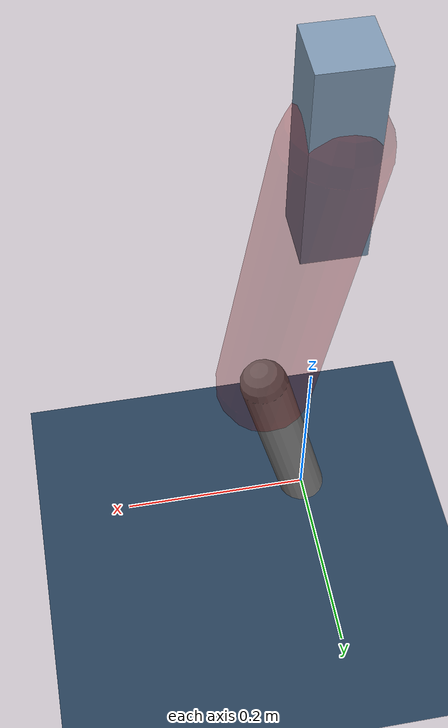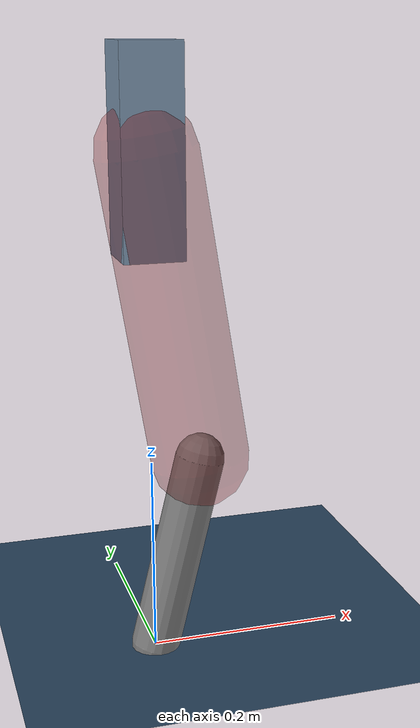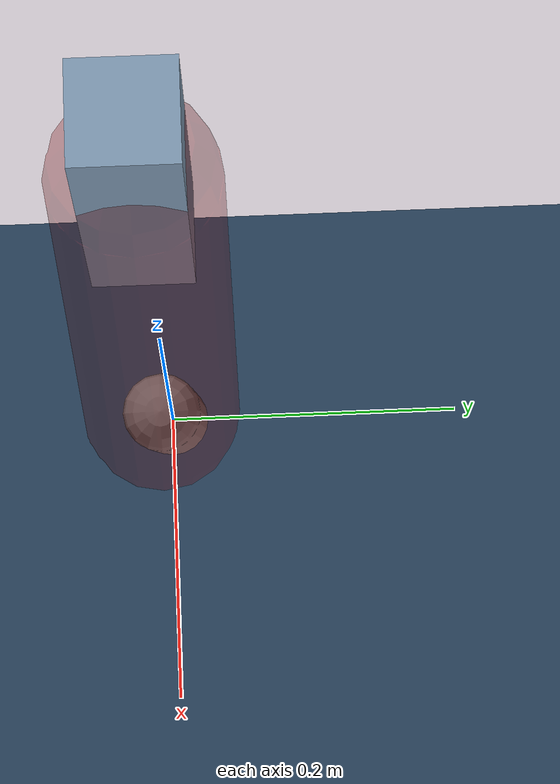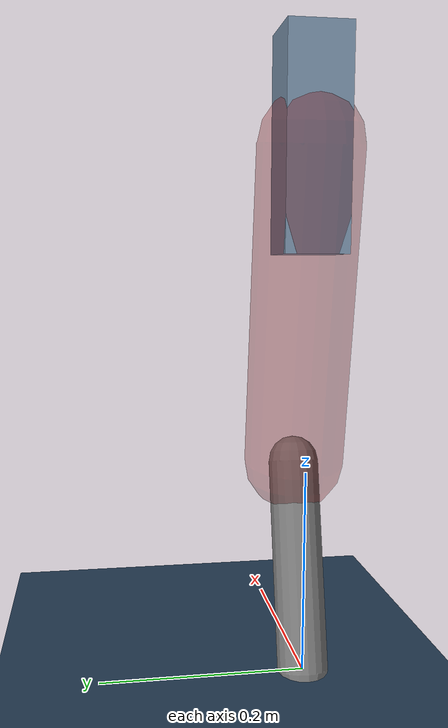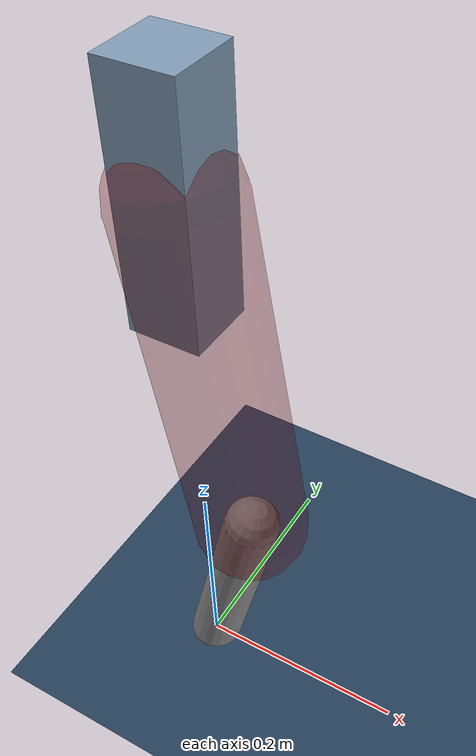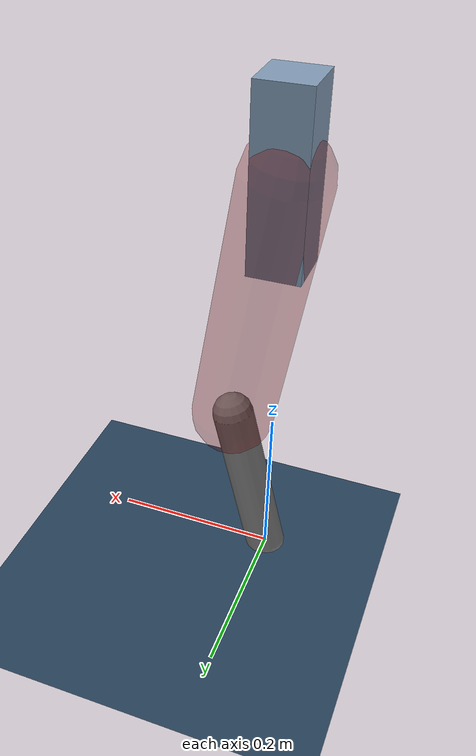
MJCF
<mujoco model="Hopper2D">
	<compiler inertiafromgeom="true" angle="radian" />
	<option timestep="0.001" integrator="implicit" cone="elliptic" solver="Newton" tolerance="1e-10" />

	<default>
		<geom contype="1" conaffinity="1" condim="3" friction="2 0.005 0.0001" solref="0.005 1" />
		<joint limited="true" damping="0.1" />
	</default>

	<asset>
		<texture name="skybox" type="skybox" builtin="gradient" rgb1=".4 .6 .8" rgb2="0 0 0" width="800" height="800" />
		<texture name="grid" type="2d" builtin="checker" rgb1=".1 .2 .3" rgb2=".2 .3 .4" width="300" height="300" mark="edge" markrgb=".2 .3 .4" />
		<material name="ground" texture="grid" texrepeat="1 1" texuniform="true" reflectance="0.1" />
		<material name="leg" rgba="0.5 0.6 0.7 1" />
	</asset>

	<worldbody>

		<geom name="floor" type="plane" size="5 5 0.25" material="ground" />

		<light directional="false" diffuse="0.8 0.8 0.8" specular="0.3 0.3 0.3" pos="0 0 2" dir="0 0 -1" />
		<light mode="targetbodycom" target="base" directional="false" diffuse="0.8 0.8 0.8" specular="0.3 0.3 0.3" pos="0 0 2" dir="0 0 -1" />

		<camera name="fixed" pos="0 -2 1" xyaxes="1 0 0 0 0 1" />
		<camera name="tracking" mode="trackcom" pos="0 -3 1" />

		<body name="root" pos="0 0 0.5077918686628692">
			<joint name="slide_x" type="slide" axis="1 0 0" range="-100 100" />
			<joint name="slide_z" type="slide" axis="0 0 1" range="0 10" />

			<body name="base" pos="0 0 0">
				<geom name="torso" type="box" size="0.03 0.03 0.1" mass="3.092" material="leg" />

				<body name="link1" pos="0 0 0" euler="0 1.4107074976272587 0">
					<joint type="hinge" axis="0 -1 0" pos="0 0 0" name="hinge1" limited="true" range="-3.14 3.14" stiffness="0" damping="0.1" />
					<geom name="thigh" type="capsule" fromto="0 0 0 0.31091353545308154 0 0" size="0.05" rgba="0.5 0 0 0.3" mass="1.0183665457233202" />

					<body name="link2" pos="0.31091353545308154 0 0" euler="0 0.4020098158487755 0">
						<joint type="hinge" axis="0 -1 0" pos="0 0 0" name="hinge2" limited="true" range="-3.14 3.14" stiffness="0" damping="0.1" />
						<geom name="shank" type="capsule" fromto="0 0 0 0.20687833320978763 0 0" size="0.025" mass="0.40669049988880884" />

					</body>
				</body>
			</body>
		</body>
	</worldbody>

	<actuator>
		<motor name="torque1" joint="hinge1" ctrlrange="-126.907141667341 126.907141667341" ctrllimited="true" gear="1" />
		<motor name="torque2" joint="hinge2" ctrlrange="-92.173342553028 92.173342553028" ctrllimited="true" gear="1" />
	</actuator>
</mujoco>
